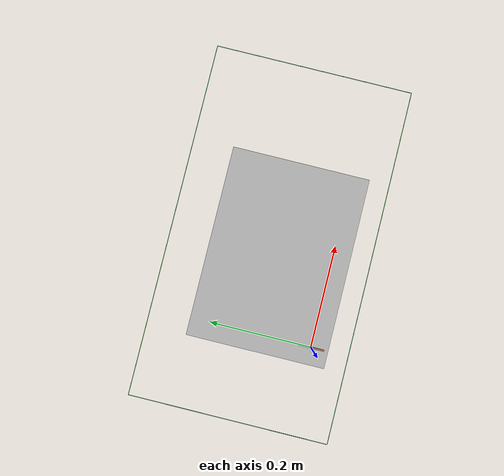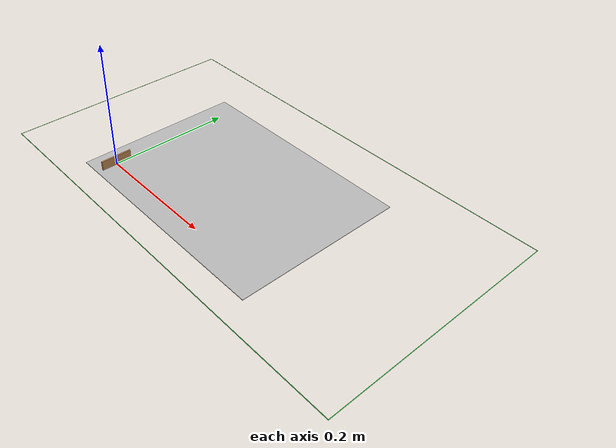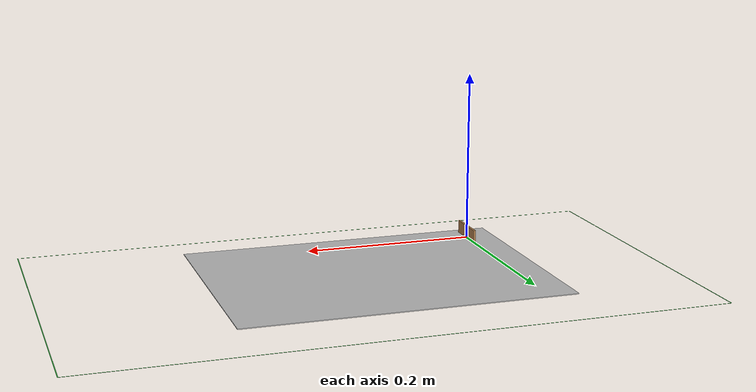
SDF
<sdf version='1.5'>
	<world name='default'>
		<model name="calibration_pattern">
			<static>1</static>
			<pose>0.153675 0.10245 -0.0005 0 0 0</pose>
			<link name="calibration_pattern_link">
				<visual name="visual">
					<transparency>0</transparency>
					<cast_shadows>false</cast_shadows>
					<geometry>
						<box>
							<size>0.37565 0.2732 0.001</size>
						</box>
					</geometry>
					<material>
						<script>
							<uri>model://calibration_pattern/materials/scripts</uri>
							<uri>model://calibration_pattern/materials/textures</uri>
							<name>calibration_pattern</name>
						</script>
					</material>
				</visual>
				<gravity>0</gravity>
			</link>
		</model>

		<model name='projection_area'>
			<static>1</static>
			<pose>-0.172 -0.074 0 0 0 0</pose>
			<model name='top'>
				<pose>0.35 0.392 0 0 0 0</pose>
				<link name='link'>
					<visual name='visual'>
						<geometry>
							<plane>
								<size>0.7 0.001</size>
							</plane>
						</geometry>
						<material>
							<script>
								<name>Gazebo/Green</name>
								<uri>__default__</uri>
							</script>
						</material>
					</visual>
					<gravity>0</gravity>
				</link>
			</model>
			<model name='bottom'>
				<pose>0.35 0 0 0 0 0</pose>
				<link name='link'>
					<visual name='visual'>
						<geometry>
							<plane>
								<size>0.7 0.001</size>
							</plane>
						</geometry>
						<material>
							<script>
								<name>Gazebo/Green</name>
								<uri>__default__</uri>
							</script>
						</material>
					</visual>
					<gravity>0</gravity>
				</link>
			</model>
			<model name='left'>
				<pose>0 0.196 0 0 0 0</pose>
				<link name='link'>
					<visual name='visual'>
						<geometry>
							<plane>
								<size>0.001 0.393</size>
							</plane>
						</geometry>
						<material>
							<script>
								<name>Gazebo/Green</name>
								<uri>__default__</uri>
							</script>
						</material>
					</visual>
					<gravity>0</gravity>
				</link>
			</model>
			<model name='right'>
				<pose>0.7 0.196 0 0 0 0</pose>
				<link name='link'>
					<visual name='visual'>
						<geometry>
							<plane>
								<size>0.001 0.393</size>
							</plane>
						</geometry>
						<material>
							<script>
								<name>Gazebo/Green</name>
								<uri>__default__</uri>
							</script>
						</material>
					</visual>
					<gravity>0</gravity>
				</link>
			</model>
		</model>

		<model name='camera_projection_mapping'>
			<static>1</static>
			<link name='projector_link'>
				<visual name='projector_link_visual'>
					<geometry>
						<box>
							<size>0.0025 0.05 0.03</size>
						</box>
					</geometry>
					<material>
						<script>
							<name>Gazebo/Wood</name>
							<uri>__default__</uri>
						</script>
					</material>
				</visual>
				<gravity>0</gravity>
				<self_collide>0</self_collide>
				<sensor name='virtual_camera' type='camera'>
					<camera name='projector_head'>
						<horizontal_fov>1.15</horizontal_fov>
						<image>
							<width>1920</width>
							<height>1080</height>
							<format>R8G8B8</format>
						</image>
						<clip>
							<near>0.1</near>
							<far>10.0</far>
						</clip>
						<noise>
							<type>gaussian</type>
							<mean>0</mean>
							<stddev>0</stddev>
						</noise>

						<lens>
							<intrinsics>
								<fx>2226</fx>
								<fy>2233</fy>
								<cx>1027</cx>
								<cy>-57</cy>
								<s>0.0</s>
							</intrinsics>
						</lens>
					</camera>
					<visualize>0</visualize>
					<plugin name='camera_controller' filename='libgazebo_ros_camera.so'>
						<alwaysOn>true</alwaysOn>
						<updateRate>10</updateRate>
						<cameraName>virtual_camera</cameraName>
						<imageTopicName>image_raw</imageTopicName>
						<cameraInfoTopicName>camera_info</cameraInfoTopicName>
						<frameName>camera_link</frameName>

						<focalLengthX>2226</focalLengthX>
						<focalLengthY>2233</focalLengthY>
						<hackBaseline>0</hackBaseline>
						<CxPrime>1027</CxPrime>
						<Cx>1027</Cx>
						<Cy>-57</Cy>

						<distortionK1>0</distortionK1>
						<distortionK2>0</distortionK2>
						<distortionT1>0</distortionT1>
						<distortionT2>0</distortionT2>
						<distortionK3>0</distortionK3>

						<robotNamespace>/</robotNamespace>
					</plugin>
				</sensor>
			</link>
			<static>1</static>
		</model>

		<physics type='ode'>
			<max_step_size>0.1</max_step_size>
			<real_time_factor>1</real_time_factor>
			<real_time_update_rate>10</real_time_update_rate>
			<max_contacts>0</max_contacts>
			<ode>
				<solver>
					<type>quick</type>
					<min_step_size>0.1</min_step_size>
					<iters>1</iters>
				</solver>
			</ode>
		</physics>

		<scene>
			<ambient>1 1 1 1</ambient>
			<background>0 0 0 1</background>
			<shadows>0</shadows>
		</scene>

		<gui fullscreen='0'>
			<camera name='user_camera'>
				<pose>0.1 0.1 1 0 1.5707 1.5707</pose>
				<view_controller>orbit</view_controller>
			</camera>
		</gui>
	</world>
</sdf>
